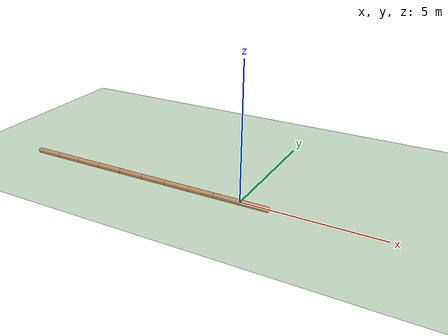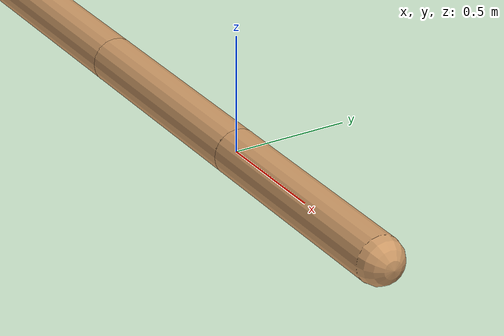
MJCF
<mujoco model="swimmer">
  <compiler angle="degree" coordinate="local" inertiafromgeom="true"/>
  <option collision="predefined" density="4000" integrator="RK4" timestep="0.01" viscosity="0.1"/>
  <default>
    <geom conaffinity="1" condim="1" contype="1" material="geom" rgba="0.8 0.6 .4 1"/>
    <joint armature='0.1'  />
  </default>
  <asset>
    <texture builtin="gradient" height="100" rgb1="1 1 1" rgb2="0 0 0" type="skybox" width="100"/>
    <texture builtin="flat" height="1278" mark="cross" markrgb="1 1 1" name="texgeom" random="0.01" rgb1="0.8 0.6 0.4" rgb2="0.8 0.6 0.4" type="cube" width="127"/>
    <texture builtin="checker" height="100" name="texplane" rgb1="0 0 0" rgb2="0.8 0.8 0.8" type="2d" width="100"/>
    <material name="MatPlane" reflectance="0.5" shininess="1" specular="1" texrepeat="30 30" texture="texplane"/>
    <material name="geom" texture="texgeom" texuniform="true"/>
  </asset>
  <worldbody>
    <light cutoff="100" diffuse="1 1 1" dir="-0 0 -1.3" directional="true" exponent="1" pos="0 0 1.3" specular=".1 .1 .1"/>
    <geom conaffinity="1" condim="3" material="MatPlane" name="floor" pos="0 0 -0.1" rgba="0.8 0.9 0.8 1" size="40 40 0.1" type="plane"/>
    <!--  ================= SWIMMER ================= /-->
    <body name="head" pos="0 0 0">
      <camera name="track" mode="trackcom" pos="0 -3 3" xyaxes="1 0 0 0 1 1"/>
      <geom density="1000" fromto="0 0 0 1 0 0" size="0.1" type="capsule"/>
      <joint axis="1 0 0" name="slider1" pos="0 0 0" type="slide"/>
      <joint axis="0 1 0" name="slider2" pos="0 0 0" type="slide"/>
      <joint axis="0 0 1" name="rot" pos="0 0 0" type="hinge"/>
      <body name="tail1" pos="0 0 0">
        <geom density="1000" fromto="0 0 0 -1 0 0" size="0.1" type="capsule"/>
        <joint axis="0 0 1" limited="true" name="rot2" pos="0 0 0" range="-100 100" type="hinge"/>
        <body name="tail2" pos="-1 0 0">
          <geom density="1000" fromto="0 0 0 -1 0 0" size="0.1" type="capsule"/>
          <joint axis="0 0 1" limited="true" name="rot3" pos="0 0 0" range="-100 100" type="hinge"/>
          <body name="tail3" pos="-1 0 0">
            <geom density="1000" fromto="0 0 0 -1 0 0" size="0.1" type="capsule"/>
            <joint axis="0 0 1" limited="true" name="rot4" pos="0 0 0" range="-100 100" type="hinge"/>
            <body name="tail4" pos="-1 0 0">
              <geom density="1000" fromto="0 0 0 -1 0 0" size="0.1" type="capsule"/>
              <joint axis="0 0 1" limited="true" name="rot5" pos="0 0 0" range="-100 100" type="hinge"/>
              <body name="tail5" pos="-1 0 0">
                <geom density="1000" fromto="0 0 0 -1 0 0" size="0.1" type="capsule"/>
                <joint axis="0 0 1" limited="true" name="rot6" pos="0 0 0" range="-100 100" type="hinge"/>
                <body name="tail6" pos="-1 0 0">
                  <geom density="1000" fromto="0 0 0 -1 0 0" size="0.1" type="capsule"/>
                  <joint axis="0 0 1" limited="true" name="rot7" pos="0 0 0" range="-100 100" type="hinge"/>
                  <body name="tail7" pos="-1 0 0">
                    <geom density="1000" fromto="0 0 0 -1 0 0" size="0.1" type="capsule"/>
                    <joint axis="0 0 1" limited="true" name="rot8" pos="0 0 0" range="-100 100" type="hinge"/>
                    <body name="tail8" pos="-1 0 0">
                      <geom density="1000" fromto="0 0 0 -1 0 0" size="0.1" type="capsule"/>
                      <joint axis="0 0 1" limited="true" name="rot9" pos="0 0 0" range="-100 100" type="hinge"/>
                      <body name="tail9" pos="-1 0 0">
                        <geom density="1000" fromto="0 0 0 -1 0 0" size="0.1" type="capsule"/>
                        <joint axis="0 0 1" limited="true" name="rot10" pos="0 0 0" range="-100 100" type="hinge"/>
                    </body>
                  </body>
                </body>
              </body>
            </body>
          </body>
        </body>
      </body>
    </body>
    </body>
  </worldbody>
  <actuator>
    <motor ctrllimited="true" ctrlrange="-1 1" gear="150.0" joint="rot2"/>
    <motor ctrllimited="true" ctrlrange="-1 1" gear="150.0" joint="rot3"/>
    <motor ctrllimited="true" ctrlrange="-1 1" gear="150.0" joint="rot4"/>
    <motor ctrllimited="true" ctrlrange="-1 1" gear="150.0" joint="rot5"/>
    <motor ctrllimited="true" ctrlrange="-1 1" gear="150.0" joint="rot6"/>
    <motor ctrllimited="true" ctrlrange="-1 1" gear="150.0" joint="rot7"/>
    <motor ctrllimited="true" ctrlrange="-1 1" gear="150.0" joint="rot8"/>
    <motor ctrllimited="true" ctrlrange="-1 1" gear="150.0" joint="rot9"/>
    <motor ctrllimited="true" ctrlrange="-1 1" gear="150.0" joint="rot10"/>
  </actuator>
</mujoco>
